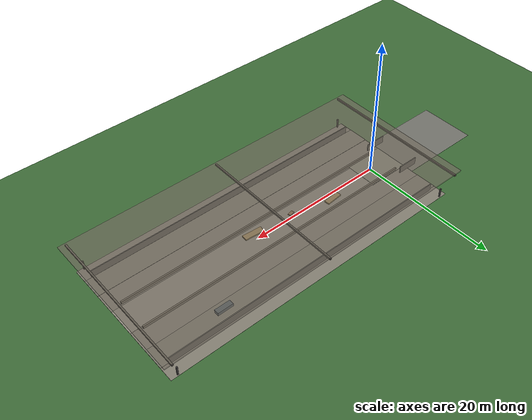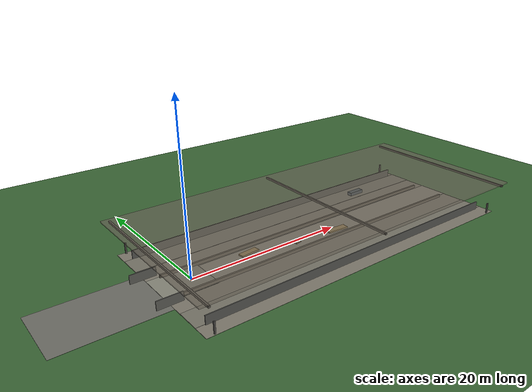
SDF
<?xml version="1.0"?>
<sdf version="1.6">
  <world name="cattle_barn_world">

    <physics type="ode">
      <max_step_size>0.001</max_step_size>
      <real_time_factor>1.0</real_time_factor>
      <real_time_update_rate>1000</real_time_update_rate>
    </physics>

    <scene>
      <ambient>0.58 0.58 0.56 1</ambient>
      <background>0.72 0.78 0.84 1</background>
      <shadows>true</shadows>
    </scene>

    <light type="sun" name="sun">
      <cast_shadows>true</cast_shadows>
      <pose>-15 -10 30 0 0 0</pose>
      <diffuse>0.9 0.86 0.78 1</diffuse>
      <specular>0.2 0.2 0.2 1</specular>
    </light>

    <model name="ground_plane">
      <static>true</static>
      <link name="link">
        <collision name="collision">
          <geometry>
            <plane>
              <normal>0 0 1</normal>
            </plane>
          </geometry>
        </collision>
        <visual name="visual">
          <geometry>
            <plane>
              <normal>0 0 1</normal>
              <size>100 70</size>
            </plane>
          </geometry>
          <material>
            <ambient>0.24 0.42 0.22 1</ambient>
            <diffuse>0.24 0.42 0.22 1</diffuse>
          </material>
        </visual>
      </link>
    </model>

    <model name="outdoor_spawn_pad">
      <static>true</static>
      <pose>-10 0 0.015 0 0 0</pose>
      <link name="link">
        <collision name="collision">
          <geometry><box><size>12 8 0.03</size></box></geometry>
        </collision>
        <visual name="visual">
          <geometry><box><size>12 8 0.03</size></box></geometry>
          <material>
            <ambient>0.45 0.45 0.42 1</ambient>
            <diffuse>0.45 0.45 0.42 1</diffuse>
          </material>
        </visual>
      </link>
    </model>

    <model name="barn_floor">
      <static>true</static>
      <pose>18 0 0.02 0 0 0</pose>
      <link name="link">
        <collision name="collision">
          <geometry><box><size>44 20 0.04</size></box></geometry>
        </collision>
        <visual name="visual">
          <geometry><box><size>44 20 0.04</size></box></geometry>
          <material>
            <ambient>0.52 0.50 0.45 1</ambient>
            <diffuse>0.52 0.50 0.45 1</diffuse>
          </material>
        </visual>
      </link>
    </model>

    <model name="main_feed_alley_4m">
      <static>true</static>
      <pose>18 0 0.045 0 0 0</pose>
      <link name="link">
        <collision name="collision">
          <geometry><box><size>44 4 0.03</size></box></geometry>
        </collision>
        <visual name="visual">
          <geometry><box><size>44 4 0.03</size></box></geometry>
          <material>
            <ambient>0.60 0.58 0.53 1</ambient>
            <diffuse>0.60 0.58 0.53 1</diffuse>
          </material>
        </visual>
      </link>
    </model>

    <model name="turning_corridor_5m">
      <static>true</static>
      <pose>-1 0 0.05 0 0 0</pose>
      <link name="link">
        <collision name="collision">
          <geometry><box><size>6 5 0.04</size></box></geometry>
        </collision>
        <visual name="visual">
          <geometry><box><size>6 5 0.04</size></box></geometry>
          <material>
            <ambient>0.56 0.56 0.50 1</ambient>
            <diffuse>0.56 0.56 0.50 1</diffuse>
          </material>
        </visual>
      </link>
    </model>

    <model name="service_alleys_3m">
      <static>true</static>
      <pose>18 0 0.055 0 0 0</pose>
      <link name="north">
        <collision name="collision">
          <pose>0 6.5 0 0 0 0</pose>
          <geometry><box><size>44 3 0.03</size></box></geometry>
        </collision>
        <visual name="visual">
          <pose>0 6.5 0 0 0 0</pose>
          <geometry><box><size>44 3 0.03</size></box></geometry>
          <material>
            <ambient>0.49 0.48 0.43 1</ambient>
            <diffuse>0.49 0.48 0.43 1</diffuse>
          </material>
        </visual>
      </link>
      <link name="south">
        <collision name="collision">
          <pose>0 -6.5 0 0 0 0</pose>
          <geometry><box><size>44 3 0.03</size></box></geometry>
        </collision>
        <visual name="visual">
          <pose>0 -6.5 0 0 0 0</pose>
          <geometry><box><size>44 3 0.03</size></box></geometry>
          <material>
            <ambient>0.49 0.48 0.43 1</ambient>
            <diffuse>0.49 0.48 0.43 1</diffuse>
          </material>
        </visual>
      </link>
    </model>

    <model name="feed_bunk_north">
      <static>true</static>
      <pose>18 2.3 0.22 0 0 0</pose>
      <link name="link">
        <collision name="collision">
          <geometry><box><size>41 0.22 0.42</size></box></geometry>
        </collision>
        <visual name="visual">
          <geometry><box><size>41 0.22 0.42</size></box></geometry>
          <material><ambient>0.38 0.35 0.30 1</ambient></material>
        </visual>
      </link>
    </model>

    <model name="feed_bunk_south">
      <static>true</static>
      <pose>18 -2.3 0.22 0 0 0</pose>
      <link name="link">
        <collision name="collision">
          <geometry><box><size>41 0.22 0.42</size></box></geometry>
        </collision>
        <visual name="visual">
          <geometry><box><size>41 0.22 0.42</size></box></geometry>
          <material><ambient>0.38 0.35 0.30 1</ambient></material>
        </visual>
      </link>
    </model>

    <model name="north_pen_back_rail">
      <static>true</static>
      <pose>18 8.1 0.55 0 0 0</pose>
      <link name="link">
        <collision name="collision"><geometry><box><size>42 0.12 1.1</size></box></geometry></collision>
        <visual name="visual"><geometry><box><size>42 0.12 1.1</size></box></geometry><material><ambient>0.30 0.30 0.28 1</ambient></material></visual>
      </link>
    </model>

    <model name="south_pen_back_rail">
      <static>true</static>
      <pose>18 -8.1 0.55 0 0 0</pose>
      <link name="link">
        <collision name="collision"><geometry><box><size>42 0.12 1.1</size></box></geometry></collision>
        <visual name="visual"><geometry><box><size>42 0.12 1.1</size></box></geometry><material><ambient>0.30 0.30 0.28 1</ambient></material></visual>
      </link>
    </model>

    <model name="barn_outer_posts">
      <static>true</static>
      <pose>18 0 0 0 0 0</pose>
      <link name="link">
        <collision name="north_front"><pose>-21 9.8 0.7 0 0 0</pose><geometry><box><size>0.18 0.18 1.4</size></box></geometry></collision>
        <collision name="south_front"><pose>-21 -9.8 0.7 0 0 0</pose><geometry><box><size>0.18 0.18 1.4</size></box></geometry></collision>
        <collision name="north_back"><pose>21 9.8 0.7 0 0 0</pose><geometry><box><size>0.18 0.18 1.4</size></box></geometry></collision>
        <collision name="south_back"><pose>21 -9.8 0.7 0 0 0</pose><geometry><box><size>0.18 0.18 1.4</size></box></geometry></collision>
        <visual name="north_front_v"><pose>-21 9.8 0.7 0 0 0</pose><geometry><box><size>0.18 0.18 1.4</size></box></geometry><material><ambient>0.26 0.25 0.24 1</ambient></material></visual>
        <visual name="south_front_v"><pose>-21 -9.8 0.7 0 0 0</pose><geometry><box><size>0.18 0.18 1.4</size></box></geometry><material><ambient>0.26 0.25 0.24 1</ambient></material></visual>
        <visual name="north_back_v"><pose>21 9.8 0.7 0 0 0</pose><geometry><box><size>0.18 0.18 1.4</size></box></geometry><material><ambient>0.26 0.25 0.24 1</ambient></material></visual>
        <visual name="south_back_v"><pose>21 -9.8 0.7 0 0 0</pose><geometry><box><size>0.18 0.18 1.4</size></box></geometry><material><ambient>0.26 0.25 0.24 1</ambient></material></visual>
      </link>
    </model>

    <model name="gps_blocking_barn_roof">
      <static>true</static>
      <pose>18 0 4.2 0 0 0</pose>
      <link name="link">
        <collision name="collision">
          <geometry><box><size>46 22 0.18</size></box></geometry>
        </collision>
        <visual name="visual">
          <geometry><box><size>46 22 0.18</size></box></geometry>
          <material>
            <ambient>0.46 0.43 0.38 1</ambient>
            <diffuse>0.46 0.43 0.38 1</diffuse>
          </material>
          <transparency>0.35</transparency>
        </visual>
      </link>
    </model>

    <model name="barn_roof_beams">
      <static>true</static>
      <pose>18 0 3.95 0 0 0</pose>
      <link name="link">
        <collision name="front_beam"><pose>-22 0 0 0 0 0</pose><geometry><box><size>0.22 22 0.22</size></box></geometry></collision>
        <collision name="mid_beam"><pose>0 0 0 0 0 0</pose><geometry><box><size>0.22 22 0.22</size></box></geometry></collision>
        <collision name="back_beam"><pose>22 0 0 0 0 0</pose><geometry><box><size>0.22 22 0.22</size></box></geometry></collision>
        <visual name="front_beam_v"><pose>-22 0 0 0 0 0</pose><geometry><box><size>0.22 22 0.22</size></box></geometry><material><ambient>0.30 0.28 0.25 1</ambient></material></visual>
        <visual name="mid_beam_v"><pose>0 0 0 0 0 0</pose><geometry><box><size>0.22 22 0.22</size></box></geometry><material><ambient>0.30 0.28 0.25 1</ambient></material></visual>
        <visual name="back_beam_v"><pose>22 0 0 0 0 0</pose><geometry><box><size>0.22 22 0.22</size></box></geometry><material><ambient>0.30 0.28 0.25 1</ambient></material></visual>
      </link>
    </model>

    <model name="feed_pile_1">
      <static>true</static>
      <pose>8 0.9 0.12 0 0 0.1</pose>
      <link name="link">
        <collision name="collision"><geometry><box><size>2.4 0.75 0.24</size></box></geometry></collision>
        <visual name="visual"><geometry><box><size>2.4 0.75 0.24</size></box></geometry><material><ambient>0.70 0.55 0.28 1</ambient></material></visual>
      </link>
    </model>

    <model name="feed_pile_2">
      <static>true</static>
      <pose>20 -0.95 0.12 0 0 -0.08</pose>
      <link name="link">
        <collision name="collision"><geometry><box><size>2.8 0.85 0.24</size></box></geometry></collision>
        <visual name="visual"><geometry><box><size>2.8 0.85 0.24</size></box></geometry><material><ambient>0.70 0.55 0.28 1</ambient></material></visual>
      </link>
    </model>

    <model name="water_trough_obstacle">
      <static>true</static>
      <pose>30 6.1 0.25 0 0 0</pose>
      <link name="link">
        <collision name="collision"><geometry><box><size>2.2 0.7 0.5</size></box></geometry></collision>
        <visual name="visual"><geometry><box><size>2.2 0.7 0.5</size></box></geometry><material><ambient>0.20 0.28 0.35 1</ambient></material></visual>
      </link>
    </model>

    <model name="gate_panel_left">
      <static>true</static>
      <pose>-4 3.1 0.55 0 0 0</pose>
      <link name="link">
        <collision name="collision"><geometry><box><size>3.0 0.12 1.1</size></box></geometry></collision>
        <visual name="visual"><geometry><box><size>3.0 0.12 1.1</size></box></geometry><material><ambient>0.32 0.32 0.30 1</ambient></material></visual>
      </link>
    </model>

    <model name="gate_panel_right">
      <static>true</static>
      <pose>-4 -3.1 0.55 0 0 0</pose>
      <link name="link">
        <collision name="collision"><geometry><box><size>3.0 0.12 1.1</size></box></geometry></collision>
        <visual name="visual"><geometry><box><size>3.0 0.12 1.1</size></box></geometry><material><ambient>0.32 0.32 0.30 1</ambient></material></visual>
      </link>
    </model>

    <model name="low_unknown_obstacle">
      <static>true</static>
      <pose>14 -0.6 0.09 0 0 0.2</pose>
      <link name="link">
        <collision name="collision"><geometry><box><size>0.8 0.45 0.18</size></box></geometry></collision>
        <visual name="visual"><geometry><box><size>0.8 0.45 0.18</size></box></geometry><material><ambient>0.55 0.39 0.22 1</ambient></material></visual>
      </link>
    </model>

  </world>
</sdf>
